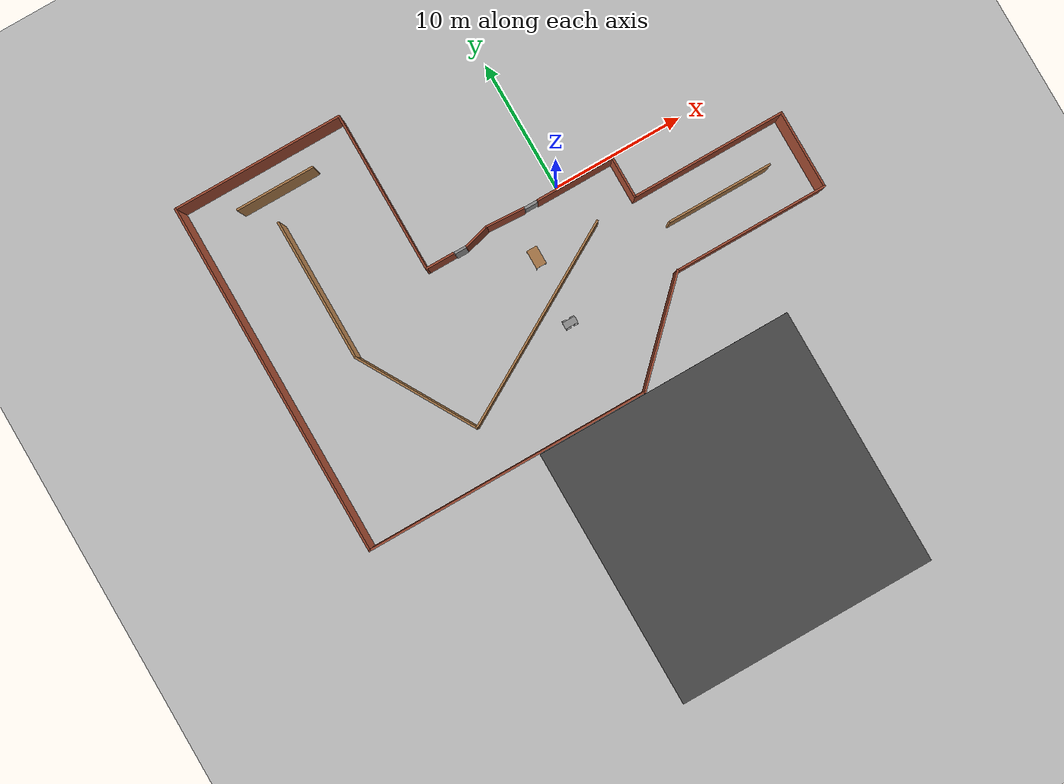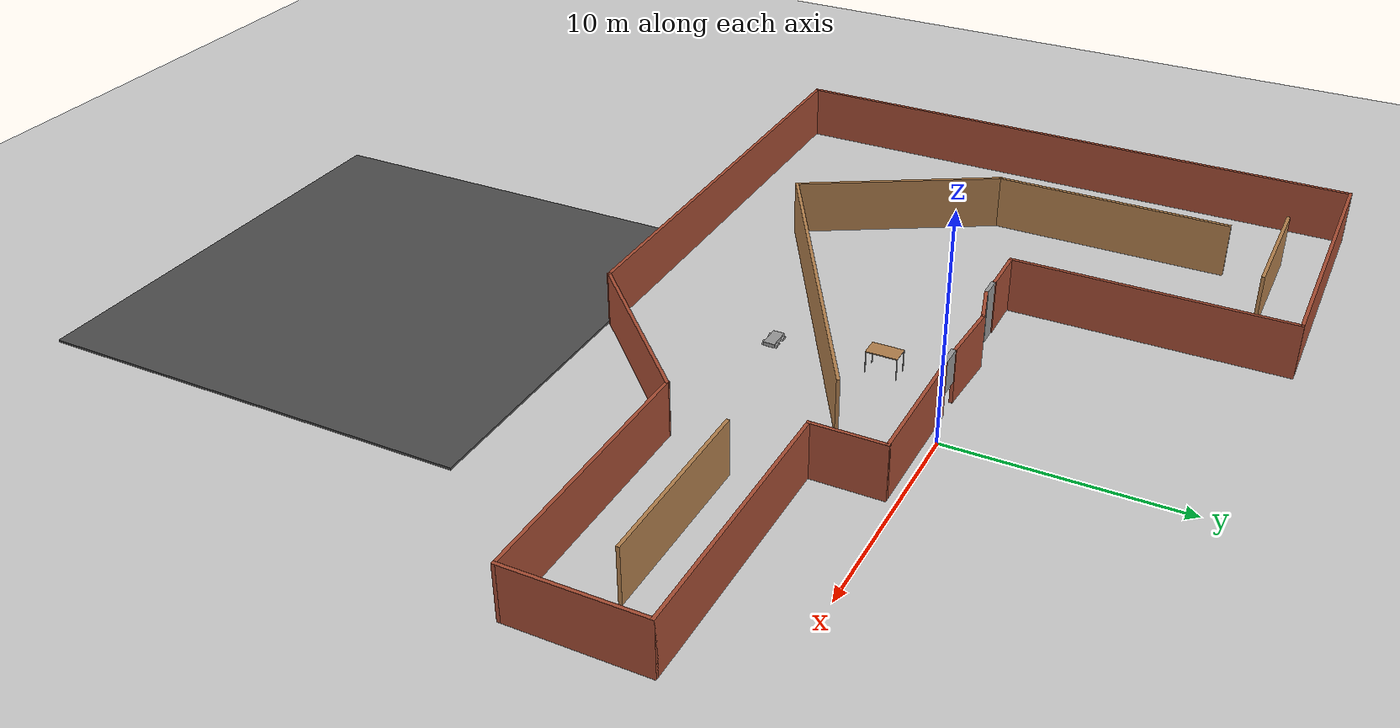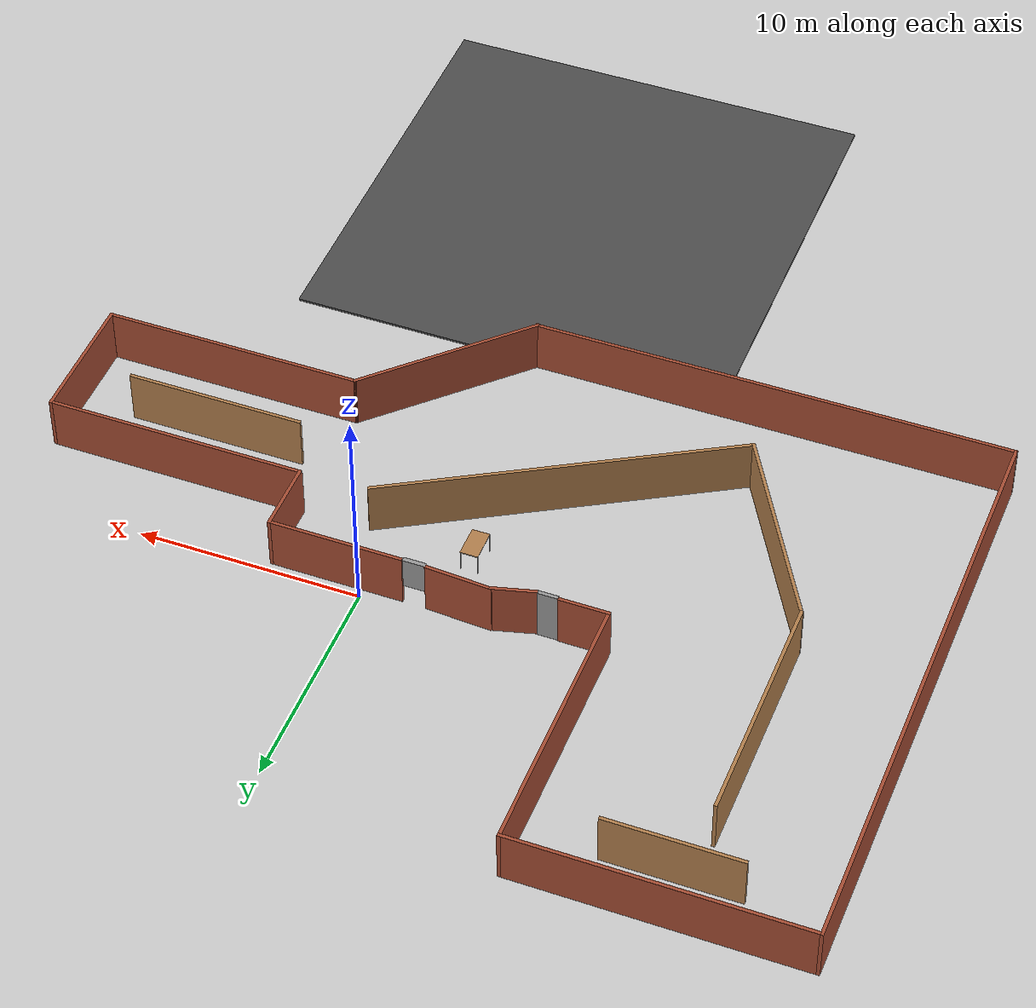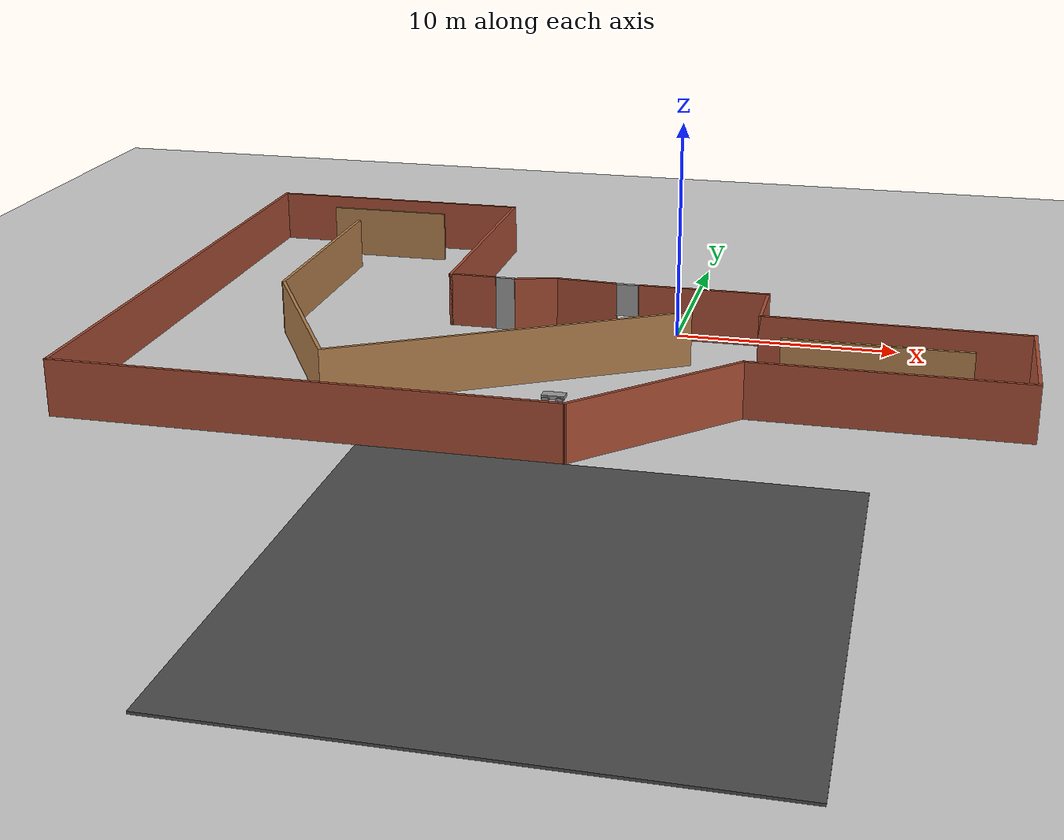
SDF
<sdf version="1.6">
 <world name="default">
  <model name="ground_plane">
   <static>1</static>
   <link name="link">
    <collision name="collision">
     <geometry><plane><normal>0 0 1</normal><size>100 100</size></plane></geometry>
     <surface><friction><ode><mu>100</mu><mu2>50</mu2></ode></friction></surface>
    </collision>
    <visual name="visual">
     <cast_shadows>0</cast_shadows>
     <geometry><plane><normal>0 0 1</normal><size>100 100</size></plane></geometry>
     <material>
      <script><uri>file://media/materials/scripts/gazebo.material</uri><name>Gazebo/Grey</name></script>
     </material>
    </visual>
   </link>
  </model>
  <model name="table_3_clone_clone_clone_0">
   <static>0</static>
   <link name="link">
    <collision name="surface">
     <pose>0 0 1 0 -0 0</pose>
     <geometry><box><size>1.5 0.8 0.03</size></box></geometry>
     <surface><friction><ode><mu>0.6</mu><mu2>0.6</mu2></ode></friction></surface>
    </collision>
    <visual name="visual1">
     <pose>0 0 1 0 -0 0</pose>
     <geometry><box><size>1.4 0.8 0.04</size></box></geometry>
     <material>
      <script><uri>file://media/materials/scripts/gazebo.material</uri><name>Gazebo/Wood</name></script>
     </material>
    </visual>
    <collision name="front_left_leg">
     <pose>0.68 0.38 0.5 0 -0 0</pose>
     <geometry><cylinder><radius>0.02</radius><length>1</length></cylinder></geometry>
    </collision>
    <visual name="front_left_leg">
     <pose>0.68 0.38 0.5 0 -0 0</pose>
     <geometry><cylinder><radius>0.02</radius><length>1</length></cylinder></geometry>
     <material>
      <script><uri>file://media/materials/scripts/gazebo.material</uri><name>Gazebo/Grey</name></script>
     </material>
    </visual>
    <collision name="front_right_leg">
     <pose>0.68 -0.38 0.5 0 -0 0</pose>
     <geometry><cylinder><radius>0.02</radius><length>1</length></cylinder></geometry>
    </collision>
    <visual name="front_right_leg">
     <pose>0.68 -0.38 0.5 0 -0 0</pose>
     <geometry><cylinder><radius>0.02</radius><length>1</length></cylinder></geometry>
     <material>
      <script><uri>file://media/materials/scripts/gazebo.material</uri><name>Gazebo/Grey</name></script>
     </material>
    </visual>
    <collision name="back_right_leg">
     <pose>-0.68 -0.38 0.5 0 -0 0</pose>
     <geometry><cylinder><radius>0.02</radius><length>1</length></cylinder></geometry>
    </collision>
    <visual name="back_right_leg">
     <pose>-0.68 -0.38 0.5 0 -0 0</pose>
     <geometry><cylinder><radius>0.02</radius><length>1</length></cylinder></geometry>
     <material>
      <script><uri>file://media/materials/scripts/gazebo.material</uri><name>Gazebo/Grey</name></script>
     </material>
    </visual>
    <collision name="back_left_leg">
     <pose>-0.68 0.38 0.5 0 -0 0</pose>
     <geometry><cylinder><radius>0.02</radius><length>1</length></cylinder></geometry>
    </collision>
    <visual name="back_left_leg">
     <pose>-0.68 0.38 0.5 0 -0 0</pose>
     <geometry><cylinder><radius>0.02</radius><length>1</length></cylinder></geometry>
     <material>
      <script><uri>file://media/materials/scripts/gazebo.material</uri><name>Gazebo/Grey</name></script>
     </material>
    </visual>
    <inertial>
     <inertia><ixx>1</ixx><ixy>0</ixy><ixz>0</ixz><iyy>1</iyy><iyz>0</iyz><izz>1</izz></inertia>
     <mass>1</mass>
    </inertial>
   </link>
   <pose>-3.69843 -3.68533 0 0 -0 1.57015</pose>
  </model>
  <model name="uljansworld">
   <pose>-3.89165 -2.11279 0 0 -0 0</pose>
   <link name="Door_1">
    <collision name="Door_1_Collision">
     <geometry><box><size>0.9 0.17 2.5</size></box></geometry>
     <pose>0 0 1.25 0 -0 0</pose>
    </collision>
    <visual name="Door_1_Visual">
     <pose>0 0 1.25 0 -0 0</pose>
     <geometry><box><size>0.9 0.17 2.5</size></box></geometry>
     <material>
      <script><uri>file://media/materials/scripts/gazebo.material</uri><name>Gazebo/Grey</name></script>
     </material>
    </visual>
    <pose>-4.14572 1.29361 0 0 -0 0</pose>
   </link>
   <link name="Wall_0">
    <collision name="Wall_0_Collision">
     <geometry><box><size>6 0.15 2.5</size></box></geometry>
     <pose>0 0 1.25 0 -0 0</pose>
    </collision>
    <visual name="Wall_0_Visual">
     <pose>0 0 1.25 0 -0 0</pose>
     <geometry><box><size>6 0.15 2.5</size></box></geometry>
     <material>
      <script><uri>file://media/materials/scripts/gazebo.material</uri><name>Gazebo/Bricks</name></script>
      <ambient>1 1 1 1</ambient>
     </material>
     <meta><layer>0</layer></meta>
    </visual>
    <pose>5.11556 1.62165 0 0 -0 0</pose>
   </link>
   <link name="Wall_1">
    <collision name="Wall_1_Collision">
     <geometry><box><size>3.25 0.15 2.5</size></box></geometry>
     <pose>0 0 1.25 0 -0 0</pose>
    </collision>
    <visual name="Wall_1_Visual">
     <pose>0 0 1.25 0 -0 0</pose>
     <geometry><box><size>3.25 0.15 2.5</size></box></geometry>
     <material>
      <script><uri>file://media/materials/scripts/gazebo.material</uri><name>Gazebo/Bricks</name></script>
      <ambient>1 1 1 1</ambient>
     </material>
     <meta><layer>0</layer></meta>
    </visual>
    <pose>8.04056 0.071651 0 0 -0 -1.5708</pose>
   </link>
   <link name="Wall_11">
    <collision name="Wall_11_Collision">
     <geometry><box><size>8 0.15 2.5</size></box></geometry>
     <pose>0 0 1.25 0 -0 0</pose>
    </collision>
    <visual name="Wall_11_Visual">
     <pose>0 0 1.25 0 -0 0</pose>
     <geometry><box><size>8 0.15 2.5</size></box></geometry>
     <material>
      <script><uri>file://media/materials/scripts/gazebo.material</uri><name>Gazebo/Wood</name></script>
      <ambient>1 1 1 1</ambient>
     </material>
     <meta><layer>0</layer></meta>
    </visual>
    <pose>13.195 -4.16753 0 0 -0 0</pose>
   </link>
   <link name="Wall_13">
    <collision name="Wall_13_Collision">
     <geometry><box><size>16.5 0.15 2.5</size></box></geometry>
     <pose>0 0 1.25 0 -0 0</pose>
    </collision>
    <visual name="Wall_13_Visual">
     <pose>0 0 1.25 0 -0 0</pose>
     <geometry><box><size>16.5 0.15 2.5</size></box></geometry>
     <material>
      <script><uri>file://media/materials/scripts/gazebo.material</uri><name>Gazebo/Wood</name></script>
      <ambient>1 1 1 1</ambient>
     </material>
     <meta><layer>0</layer></meta>
    </visual>
    <pose>-2.12241 -5.73254 0 0 -0 -2.61799</pose>
   </link>
   <link name="Wall_14">
    <collision name="Wall_14_Collision">
     <geometry><box><size>9.75 0.15 2.5</size></box></geometry>
     <pose>0 0 1.25 0 -0 0</pose>
    </collision>
    <visual name="Wall_14_Visual">
     <pose>0 0 1.25 0 -0 0</pose>
     <geometry><box><size>9.75 0.15 2.5</size></box></geometry>
     <material>
      <script><uri>file://media/materials/scripts/gazebo.material</uri><name>Gazebo/Wood</name></script>
      <ambient>1 1 1 1</ambient>
     </material>
     <meta><layer>0</layer></meta>
    </visual>
    <pose>-11.6022 -5.66312 0 0 -0 2.0944</pose>
   </link>
   <link name="Wall_15">
    <collision name="Wall_15_Collision">
     <geometry><box><size>10.75 0.15 2.5</size></box></geometry>
     <pose>0 0 1.25 0 -0 0</pose>
    </collision>
    <visual name="Wall_15_Visual">
     <pose>0 0 1.25 0 -0 0</pose>
     <geometry><box><size>10.75 0.15 2.5</size></box></geometry>
     <material>
      <script><uri>file://media/materials/scripts/gazebo.material</uri><name>Gazebo/Wood</name></script>
      <ambient>1 1 1 1</ambient>
     </material>
     <meta><layer>0</layer></meta>
    </visual>
    <pose>-14.0022 3.7938 0 0 -0 1.5708</pose>
   </link>
   <link name="Wall_18">
    <collision name="Wall_18_Collision">
     <geometry><box><size>6 0.15 2.5</size></box></geometry>
     <pose>0 0 1.25 0 -0 0</pose>
    </collision>
    <visual name="Wall_18_Visual">
     <pose>0 0 1.25 0 -0 0</pose>
     <geometry><box><size>6 0.15 2.5</size></box></geometry>
     <material>
      <script><uri>file://media/materials/scripts/gazebo.material</uri><name>Gazebo/Wood</name></script>
      <ambient>1 1 1 1</ambient>
     </material>
     <meta><layer>0</layer></meta>
    </visual>
    <pose>-13.0299 11.2929 0 0 -0 0</pose>
   </link>
   <link name="Wall_2">
    <collision name="Wall_2_Collision">
     <geometry><box><size>11.75 0.15 2.5</size></box></geometry>
     <pose>0 0 1.25 0 -0 0</pose>
    </collision>
    <visual name="Wall_2_Visual">
     <pose>0 0 1.25 0 -0 0</pose>
     <geometry><box><size>11.75 0.15 2.5</size></box></geometry>
     <material>
      <script><uri>file://media/materials/scripts/gazebo.material</uri><name>Gazebo/Bricks</name></script>
      <ambient>1 1 1 1</ambient>
     </material>
     <meta><layer>0</layer></meta>
    </visual>
    <pose>13.8406 -1.47835 0 0 -0 0</pose>
   </link>
   <link name="Wall_20">
    <collision name="Wall_20_Collision">
     <geometry><box><size>3.00454 0.15 2.5</size></box></geometry>
     <pose>0 0 1.25 0 -0 0</pose>
    </collision>
    <visual name="Wall_20_Visual">
     <pose>0 0 1.25 0 -0 0</pose>
     <geometry><box><size>3.00454 0.15 2.5</size></box></geometry>
     <material>
      <script><uri>file://media/materials/scripts/gazebo.material</uri><name>Gazebo/Bricks</name></script>
      <ambient>1 1 1 1</ambient>
     </material>
     <meta><layer>0</layer></meta>
    </visual>
    <pose>-0.404756 1.71841 0 0 -0 3.08519</pose>
   </link>
   <link name="Wall_22">
    <collision name="Wall_22_Collision">
     <geometry><box><size>2.25 0.15 2.5</size></box></geometry>
     <pose>0 0 1.25 0 -0 0</pose>
    </collision>
    <visual name="Wall_22_Visual">
     <pose>0 0 1.25 0 -0 0</pose>
     <geometry><box><size>2.25 0.15 2.5</size></box></geometry>
     <material>
      <script><uri>file://media/materials/scripts/gazebo.material</uri><name>Gazebo/Bricks</name></script>
      <ambient>1 1 1 1</ambient>
     </material>
     <meta><layer>0</layer></meta>
    </visual>
    <pose>-5.74056 1.34053 0 0 -0 0</pose>
   </link>
   <link name="Wall_24">
    <collision name="Wall_24_Collision">
     <geometry><box><size>2 0.15 2.5</size></box></geometry>
     <pose>0 0 1.25 0 -0 0</pose>
    </collision>
    <visual name="Wall_24_Visual">
     <pose>0 0 1.25 0 -0 0</pose>
     <geometry><box><size>2 0.15 2.5</size></box></geometry>
     <material>
      <script><uri>file://media/materials/scripts/gazebo.material</uri><name>Gazebo/Bricks</name></script>
      <ambient>1 1 1 1</ambient>
     </material>
     <meta><layer>0</layer></meta>
    </visual>
    <pose>-2.74335 1.53934 0 0 -0 0.261799</pose>
   </link>
   <link name="Wall_3">
    <collision name="Wall_3_Collision">
     <geometry><box><size>6 0.15 2.5</size></box></geometry>
     <pose>0 0 1.25 0 -0 0</pose>
    </collision>
    <visual name="Wall_3_Visual">
     <pose>0 0 1.25 0 -0 0</pose>
     <geometry><box><size>6 0.15 2.5</size></box></geometry>
     <material>
      <script><uri>file://media/materials/scripts/gazebo.material</uri><name>Gazebo/Bricks</name></script>
      <ambient>1 1 1 1</ambient>
     </material>
     <meta><layer>0</layer></meta>
    </visual>
    <pose>19.6406 -4.40335 0 0 -0 -1.5708</pose>
   </link>
   <link name="Wall_4">
    <collision name="Wall_4_Collision">
     <geometry><box><size>11.75 0.15 2.5</size></box></geometry>
     <pose>0 0 1.25 0 -0 0</pose>
    </collision>
    <visual name="Wall_4_Visual">
     <pose>0 0 1.25 0 -0 0</pose>
     <geometry><box><size>11.75 0.15 2.5</size></box></geometry>
     <material>
      <script><uri>file://media/materials/scripts/gazebo.material</uri><name>Gazebo/Bricks</name></script>
      <ambient>1 1 1 1</ambient>
     </material>
     <meta><layer>0</layer></meta>
    </visual>
    <pose>13.8406 -7.32835 0 0 -0 3.14159</pose>
   </link>
   <link name="Wall_5">
    <collision name="Wall_5_Collision">
     <geometry><box><size>8.75 0.15 2.5</size></box></geometry>
     <pose>0 0 1.25 0 -0 0</pose>
    </collision>
    <visual name="Wall_5_Visual">
     <pose>0 0 1.25 0 -0 0</pose>
     <geometry><box><size>8.75 0.15 2.5</size></box></geometry>
     <material>
      <script><uri>file://media/materials/scripts/gazebo.material</uri><name>Gazebo/Bricks</name></script>
      <ambient>1 1 1 1</ambient>
     </material>
     <meta><layer>0</layer></meta>
    </visual>
    <pose>5 -10.3689 0 0 -0 -2.35619</pose>
   </link>
   <link name="Wall_6">
    <collision name="Wall_6_Collision">
     <geometry><box><size>21.75 0.15 2.5</size></box></geometry>
     <pose>0 0 1.25 0 -0 0</pose>
    </collision>
    <visual name="Wall_6_Visual">
     <pose>0 0 1.25 0 -0 0</pose>
     <geometry><box><size>21.75 0.15 2.5</size></box></geometry>
     <material>
      <script><uri>file://media/materials/scripts/gazebo.material</uri><name>Gazebo/Bricks</name></script>
      <ambient>1 1 1 1</ambient>
     </material>
     <meta><layer>0</layer></meta>
    </visual>
    <pose>-8.84056 -13.4095 0 0 -0 3.14159</pose>
   </link>
   <link name="Wall_7">
    <collision name="Wall_7_Collision">
     <geometry><box><size>27 0.15 2.5</size></box></geometry>
     <pose>0 0 1.25 0 -0 0</pose>
    </collision>
    <visual name="Wall_7_Visual">
     <pose>0 0 1.25 0 -0 0</pose>
     <geometry><box><size>27 0.15 2.5</size></box></geometry>
     <material>
      <script><uri>file://media/materials/scripts/gazebo.material</uri><name>Gazebo/Bricks</name></script>
      <ambient>1 1 1 1</ambient>
     </material>
     <meta><layer>0</layer></meta>
    </visual>
    <pose>-19.6406 0.015532 0 0 -0 1.5708</pose>
   </link>
   <link name="Wall_8">
    <collision name="Wall_8_Collision">
     <geometry><box><size>13 0.15 2.5</size></box></geometry>
     <pose>0 0 1.25 0 -0 0</pose>
    </collision>
    <visual name="Wall_8_Visual">
     <pose>0 0 1.25 0 -0 0</pose>
     <geometry><box><size>13 0.15 2.5</size></box></geometry>
     <material>
      <script><uri>file://media/materials/scripts/gazebo.material</uri><name>Gazebo/Bricks</name></script>
      <ambient>1 1 1 1</ambient>
     </material>
     <meta><layer>0</layer></meta>
    </visual>
    <pose>-13.2156 13.4405 0 0 -0 0</pose>
   </link>
   <link name="Wall_9">
    <collision name="Wall_9_Collision">
     <geometry><box><size>12.25 0.15 2.5</size></box></geometry>
     <pose>0 0 1.25 0 -0 0</pose>
    </collision>
    <visual name="Wall_9_Visual">
     <pose>0 0 1.25 0 -0 0</pose>
     <geometry><box><size>12.25 0.15 2.5</size></box></geometry>
     <material>
      <script><uri>file://media/materials/scripts/gazebo.material</uri><name>Gazebo/Bricks</name></script>
      <ambient>1 1 1 1</ambient>
     </material>
     <meta><layer>0</layer></meta>
    </visual>
    <pose>-6.79056 7.39053 0 0 -0 -1.5708</pose>
   </link>
   <link name="Window_0">
    <collision name="Window_0_Collision">
     <geometry><box><size>1 0.2 1.5</size></box></geometry>
     <pose>0 0 0.75 0 -0 0</pose>
    </collision>
    <visual name="Window_0_Visual">
     <pose>0 0 0.75 0 -0 0</pose>
     <geometry><box><size>1 0.2 1.5</size></box></geometry>
     <material>
      <script><uri>file://media/materials/scripts/gazebo.material</uri><name>Gazebo/Grey</name></script>
     </material>
    </visual>
    <pose>1.5827 1.57844 1 0 -0 0</pose>
   </link>
   <static>1</static>
  </model>
  <model name="asphalt_plane">
   <static>1</static>
   <link name="link">
    <collision name="collision"><geometry><box><size>20 20 0.1</size></box></geometry></collision>
    <visual name="visual">
     <cast_shadows>0</cast_shadows>
     <geometry><box><size>20 20 0.1</size></box></geometry>
     <material>
      <script>
       <uri>model://asphalt_plane/materials/scripts</uri>
       <uri>model://asphalt_plane/materials/textures</uri>
       <name>vrc/asphalt</name>
      </script>
     </material>
    </visual>
   </link>
   <pose>-0.343897 -25.6982 0 0 -0 0</pose>
  </model>
  <model name="Wheely_robot2">
   <link name="link_0">
    <inertial>
     <mass>1</mass>
     <inertia>
      <ixx>0.166667</ixx>
      <ixy>0</ixy>
      <ixz>0</ixz>
      <iyy>0.166667</iyy>
      <iyz>0</iyz>
      <izz>0.166667</izz>
     </inertia>
    </inertial>
    <pose>0 0.001523 -0.04 0 -0 0</pose>
    <visual name="visual">
     <geometry><box><size>1 0.5 0.3</size></box></geometry>
     <material>
      <lighting>1</lighting>
      <script><uri>file://media/materials/scripts/gazebo.material</uri><name>Gazebo/Grey</name></script>
      <shader type="vertex"><normal_map>__default__</normal_map></shader>
      <ambient>0.3 0.3 0.3 1</ambient>
      <diffuse>0.7 0.7 0.7 1</diffuse>
      <specular>0.01 0.01 0.01 1</specular>
      <emissive>0 0 0 1</emissive>
     </material>
    </visual>
    <collision name="collision">
     <geometry><box><size>1 0.5 0.3</size></box></geometry>
     <surface>
      <friction>
       <ode><mu>1</mu><mu2>1</mu2><fdir1>0 0 0</fdir1><slip1>0</slip1><slip2>0</slip2></ode>
       <torsional>
        <coefficient>1</coefficient>
        <patch_radius>0</patch_radius>
        <surface_radius>0</surface_radius>
        <use_patch_radius>1</use_patch_radius>
        <ode><slip>0</slip></ode>
       </torsional>
      </friction>
      <bounce><restitution_coefficient>0</restitution_coefficient><threshold>1e+06</threshold></bounce>
      <contact>
       <collide_without_contact>0</collide_without_contact>
       <collide_without_contact_bitmask>1</collide_without_contact_bitmask>
       <collide_bitmask>1</collide_bitmask>
       <ode>
        <soft_cfm>0</soft_cfm>
        <soft_erp>0.2</soft_erp>
        <kp>1e+13</kp>
        <kd>1</kd>
        <max_vel>0.01</max_vel>
        <min_depth>0</min_depth>
       </ode>
       <bullet>
        <split_impulse>1</split_impulse>
        <split_impulse_penetration_threshold>-0.01</split_impulse_penetration_threshold>
        <soft_cfm>0</soft_cfm>
        <soft_erp>0.2</soft_erp>
        <kp>1e+13</kp>
        <kd>1</kd>
       </bullet>
      </contact>
     </surface>
    </collision>
   </link>
   <link name="link_1_clone_0">
    <inertial>
     <mass>1</mass>
     <inertia><ixx>0.145833</ixx><ixy>0</ixy><ixz>0</ixz><iyy>0.145833</iyy><iyz>0</iyz><izz>0.125</izz></inertia>
    </inertial>
    <pose>0.3 -0.298496 -0.14 1.5707 -0 0</pose>
    <visual name="visual">
     <geometry><cylinder><radius>0.2</radius><length>0.1</length></cylinder></geometry>
     <material>
      <lighting>1</lighting>
      <script><uri>file://media/materials/scripts/gazebo.material</uri><name>Gazebo/Grey</name></script>
      <shader type="vertex"><normal_map>__default__</normal_map></shader>
      <ambient>0.3 0.3 0.3 1</ambient>
      <diffuse>0.7 0.7 0.7 1</diffuse>
      <specular>0.01 0.01 0.01 1</specular>
      <emissive>0 0 0 1</emissive>
     </material>
    </visual>
    <collision name="collision">
     <geometry><cylinder><radius>0.2</radius><length>0.1</length></cylinder></geometry>
     <surface>
      <friction>
       <ode><mu>1</mu><mu2>1</mu2><fdir1>0 0 0</fdir1><slip1>0</slip1><slip2>0</slip2></ode>
       <torsional>
        <coefficient>1</coefficient>
        <patch_radius>0</patch_radius>
        <surface_radius>0</surface_radius>
        <use_patch_radius>1</use_patch_radius>
        <ode><slip>0</slip></ode>
       </torsional>
      </friction>
      <bounce><restitution_coefficient>0</restitution_coefficient><threshold>1e+06</threshold></bounce>
      <contact>
       <collide_without_contact>0</collide_without_contact>
       <collide_without_contact_bitmask>1</collide_without_contact_bitmask>
       <collide_bitmask>1</collide_bitmask>
       <ode>
        <soft_cfm>0</soft_cfm>
        <soft_erp>0.2</soft_erp>
        <kp>1e+13</kp>
        <kd>1</kd>
        <max_vel>0.01</max_vel>
        <min_depth>0</min_depth>
       </ode>
       <bullet>
        <split_impulse>1</split_impulse>
        <split_impulse_penetration_threshold>-0.01</split_impulse_penetration_threshold>
        <soft_cfm>0</soft_cfm>
        <soft_erp>0.2</soft_erp>
        <kp>1e+13</kp>
        <kd>1</kd>
       </bullet>
      </contact>
     </surface>
    </collision>
   </link>
   <link name="link_1_clone_1">
    <inertial>
     <mass>1</mass>
     <inertia><ixx>0.145833</ixx><ixy>0</ixy><ixz>0</ixz><iyy>0.145833</iyy><iyz>0</iyz><izz>0.125</izz></inertia>
    </inertial>
    <pose>-0.3 -0.298496 -0.14 1.5707 -0 0</pose>
    <visual name="visual">
     <geometry><cylinder><radius>0.2</radius><length>0.1</length></cylinder></geometry>
     <material>
      <lighting>1</lighting>
      <script><uri>file://media/materials/scripts/gazebo.material</uri><name>Gazebo/Grey</name></script>
      <shader type="vertex"><normal_map>__default__</normal_map></shader>
      <ambient>0.3 0.3 0.3 1</ambient>
      <diffuse>0.7 0.7 0.7 1</diffuse>
      <specular>0.01 0.01 0.01 1</specular>
      <emissive>0 0 0 1</emissive>
     </material>
    </visual>
    <collision name="collision">
     <geometry><cylinder><radius>0.2</radius><length>0.1</length></cylinder></geometry>
     <surface>
      <friction>
       <ode><mu>1</mu><mu2>1</mu2><fdir1>0 0 0</fdir1><slip1>0</slip1><slip2>0</slip2></ode>
       <torsional>
        <coefficient>1</coefficient>
        <patch_radius>0</patch_radius>
        <surface_radius>0</surface_radius>
        <use_patch_radius>1</use_patch_radius>
        <ode><slip>0</slip></ode>
       </torsional>
      </friction>
      <bounce><restitution_coefficient>0</restitution_coefficient><threshold>1e+06</threshold></bounce>
      <contact>
       <collide_without_contact>0</collide_without_contact>
       <collide_without_contact_bitmask>1</collide_without_contact_bitmask>
       <collide_bitmask>1</collide_bitmask>
       <ode>
        <soft_cfm>0</soft_cfm>
        <soft_erp>0.2</soft_erp>
        <kp>1e+13</kp>
        <kd>1</kd>
        <max_vel>0.01</max_vel>
        <min_depth>0</min_depth>
       </ode>
       <bullet>
        <split_impulse>1</split_impulse>
        <split_impulse_penetration_threshold>-0.01</split_impulse_penetration_threshold>
        <soft_cfm>0</soft_cfm>
        <soft_erp>0.2</soft_erp>
        <kp>1e+13</kp>
        <kd>1</kd>
       </bullet>
      </contact>
     </surface>
    </collision>
   </link>
   <link name="link_1_clone_1_clone">
    <inertial>
     <mass>1</mass>
     <inertia><ixx>0.145833</ixx><ixy>0</ixy><ixz>0</ixz><iyy>0.145833</iyy><iyz>0</iyz><izz>0.125</izz></inertia>
    </inertial>
    <pose>0.3 0.293927 -0.14 1.5707 -0 0</pose>
    <visual name="visual">
     <geometry><cylinder><radius>0.2</radius><length>0.1</length></cylinder></geometry>
     <material>
      <lighting>1</lighting>
      <script><uri>file://media/materials/scripts/gazebo.material</uri><name>Gazebo/Grey</name></script>
      <shader type="vertex"><normal_map>__default__</normal_map></shader>
      <ambient>0.3 0.3 0.3 1</ambient>
      <diffuse>0.7 0.7 0.7 1</diffuse>
      <specular>0.01 0.01 0.01 1</specular>
      <emissive>0 0 0 1</emissive>
     </material>
    </visual>
    <collision name="collision">
     <geometry><cylinder><radius>0.2</radius><length>0.1</length></cylinder></geometry>
     <surface>
      <friction>
       <ode><mu>1</mu><mu2>1</mu2><fdir1>0 0 0</fdir1><slip1>0</slip1><slip2>0</slip2></ode>
       <torsional>
        <coefficient>1</coefficient>
        <patch_radius>0</patch_radius>
        <surface_radius>0</surface_radius>
        <use_patch_radius>1</use_patch_radius>
        <ode><slip>0</slip></ode>
       </torsional>
      </friction>
      <bounce><restitution_coefficient>0</restitution_coefficient><threshold>1e+06</threshold></bounce>
      <contact>
       <collide_without_contact>0</collide_without_contact>
       <collide_without_contact_bitmask>1</collide_without_contact_bitmask>
       <collide_bitmask>1</collide_bitmask>
       <ode>
        <soft_cfm>0</soft_cfm>
        <soft_erp>0.2</soft_erp>
        <kp>1e+13</kp>
        <kd>1</kd>
        <max_vel>0.01</max_vel>
        <min_depth>0</min_depth>
       </ode>
       <bullet>
        <split_impulse>1</split_impulse>
        <split_impulse_penetration_threshold>-0.01</split_impulse_penetration_threshold>
        <soft_cfm>0</soft_cfm>
        <soft_erp>0.2</soft_erp>
        <kp>1e+13</kp>
        <kd>1</kd>
       </bullet>
      </contact>
     </surface>
    </collision>
   </link>
   <link name="link_1_clone_1_clone_0">
    <inertial>
     <mass>1</mass>
     <inertia><ixx>0.145833</ixx><ixy>0</ixy><ixz>0</ixz><iyy>0.145833</iyy><iyz>0</iyz><izz>0.125</izz></inertia>
    </inertial>
    <pose>-0.3 0.301542 -0.14 1.5707 -0 0</pose>
    <visual name="visual">
     <geometry><cylinder><radius>0.2</radius><length>0.1</length></cylinder></geometry>
     <material>
      <lighting>1</lighting>
      <script><uri>file://media/materials/scripts/gazebo.material</uri><name>Gazebo/Grey</name></script>
      <shader type="vertex"><normal_map>__default__</normal_map></shader>
      <ambient>0.3 0.3 0.3 1</ambient>
      <diffuse>0.7 0.7 0.7 1</diffuse>
      <specular>0.01 0.01 0.01 1</specular>
      <emissive>0 0 0 1</emissive>
     </material>
    </visual>
    <collision name="collision">
     <geometry><cylinder><radius>0.2</radius><length>0.1</length></cylinder></geometry>
     <surface>
      <friction>
       <ode><mu>1</mu><mu2>1</mu2><fdir1>0 0 0</fdir1><slip1>0</slip1><slip2>0</slip2></ode>
       <torsional>
        <coefficient>1</coefficient>
        <patch_radius>0</patch_radius>
        <surface_radius>0</surface_radius>
        <use_patch_radius>1</use_patch_radius>
        <ode><slip>0</slip></ode>
       </torsional>
      </friction>
      <bounce><restitution_coefficient>0</restitution_coefficient><threshold>1e+06</threshold></bounce>
      <contact>
       <collide_without_contact>0</collide_without_contact>
       <collide_without_contact_bitmask>1</collide_without_contact_bitmask>
       <collide_bitmask>1</collide_bitmask>
       <ode>
        <soft_cfm>0</soft_cfm>
        <soft_erp>0.2</soft_erp>
        <kp>1e+13</kp>
        <kd>1</kd>
        <max_vel>0.01</max_vel>
        <min_depth>0</min_depth>
       </ode>
       <bullet>
        <split_impulse>1</split_impulse>
        <split_impulse_penetration_threshold>-0.01</split_impulse_penetration_threshold>
        <soft_cfm>0</soft_cfm>
        <soft_erp>0.2</soft_erp>
        <kp>1e+13</kp>
        <kd>1</kd>
       </bullet>
      </contact>
     </surface>
    </collision>
   </link>
   <joint name="link_0_JOINT_1" type="revolute">
    <parent>link_0</parent>
    <child>link_1_clone_0</child>
    <axis>
     <xyz>0 0 1</xyz>
     <use_parent_model_frame>0</use_parent_model_frame>
     <limit>
      <lower>-1.79769e+308</lower>
      <upper>1.79769e+308</upper>
      <effort>-1</effort>
      <velocity>-1</velocity>
     </limit>
     <dynamics>
      <spring_reference>0</spring_reference>
      <spring_stiffness>0</spring_stiffness>
      <damping>0</damping>
      <friction>0</friction>
     </dynamics>
    </axis>
    <physics>
     <ode><limit><cfm>0</cfm><erp>0.2</erp></limit><suspension><cfm>0</cfm><erp>0.2</erp></suspension></ode>
    </physics>
   </joint>
   <joint name="link_0_JOINT_4" type="revolute">
    <parent>link_0</parent>
    <child>link_1_clone_1</child>
    <axis>
     <xyz>0 0 1</xyz>
     <use_parent_model_frame>0</use_parent_model_frame>
     <limit>
      <lower>-1.79769e+308</lower>
      <upper>1.79769e+308</upper>
      <effort>-1</effort>
      <velocity>-1</velocity>
     </limit>
     <dynamics>
      <spring_reference>0</spring_reference>
      <spring_stiffness>0</spring_stiffness>
      <damping>0</damping>
      <friction>0</friction>
     </dynamics>
    </axis>
    <physics>
     <ode><limit><cfm>0</cfm><erp>0.2</erp></limit><suspension><cfm>0</cfm><erp>0.2</erp></suspension></ode>
    </physics>
   </joint>
   <joint name="link_0_JOINT_5" type="revolute">
    <parent>link_0</parent>
    <child>link_1_clone_1_clone</child>
    <axis>
     <xyz>0 0 1</xyz>
     <use_parent_model_frame>0</use_parent_model_frame>
     <limit>
      <lower>-1.79769e+308</lower>
      <upper>1.79769e+308</upper>
      <effort>-1</effort>
      <velocity>-1</velocity>
     </limit>
     <dynamics>
      <spring_reference>0</spring_reference>
      <spring_stiffness>0</spring_stiffness>
      <damping>0</damping>
      <friction>0</friction>
     </dynamics>
    </axis>
    <physics>
     <ode><limit><cfm>0</cfm><erp>0.2</erp></limit><suspension><cfm>0</cfm><erp>0.2</erp></suspension></ode>
    </physics>
   </joint>
   <joint name="link_0_JOINT_6" type="revolute">
    <parent>link_0</parent>
    <child>link_1_clone_1_clone_0</child>
    <axis>
     <xyz>0 0 1</xyz>
     <use_parent_model_frame>0</use_parent_model_frame>
     <limit>
      <lower>-1.79769e+308</lower>
      <upper>1.79769e+308</upper>
      <effort>-1</effort>
      <velocity>-1</velocity>
     </limit>
     <dynamics>
      <spring_reference>0</spring_reference>
      <spring_stiffness>0</spring_stiffness>
      <damping>0</damping>
      <friction>0</friction>
     </dynamics>
    </axis>
    <physics>
     <ode><limit><cfm>0</cfm><erp>0.2</erp></limit><suspension><cfm>0</cfm><erp>0.2</erp></suspension></ode>
    </physics>
   </joint>
   <static>0</static>
   <pose>-3.90157 -8.74744 0 0 -0 0</pose>
  </model>
 </world>
</sdf>
